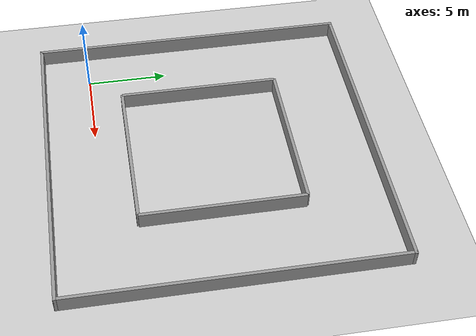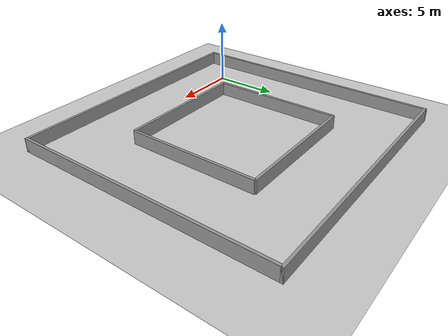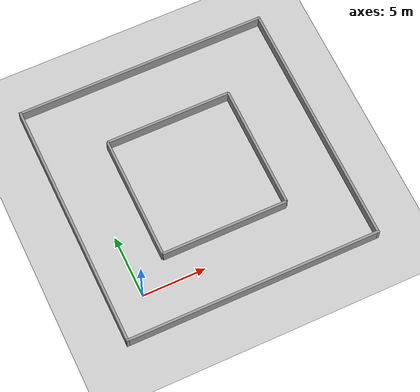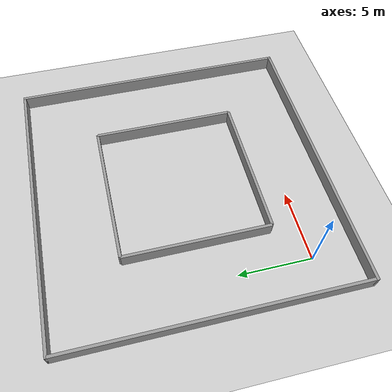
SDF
<?xml version="1.0" ?>
<sdf version="1.3">
  <world name="default">
    <!-- A global light source -->
    <include>
      <uri>model://sun</uri>
    </include>

    <!-- A ground plane -->
    <include>
      <uri>model://ground_plane</uri>
    </include>

<model name='BuildingDefaultName'>

    <link name='Wall_3'>
      <collision name='Wall_3_Collision'>
        <geometry>
          <box>
            <size>20.2 0.2 2</size>
          </box>
        </geometry>
        <pose>7.5 0 0 0 -0 0</pose>
      </collision>
      <visual name='Wall_3_Visual'>
        <pose>7.5 0 0 0 -0 0</pose>
        <geometry>
          <box>
            <size>20.2 0.2 2</size>
          </box>
        </geometry>
        <material>
          <script>
            <uri>file://media/materials/scripts/gazebo.material</uri>
            <name>Gazebo/Grey</name>
          </script>
        </material>
      </visual>
      <velocity_decay>
        <linear>0</linear>
        <angular>0</angular>
      </velocity_decay>
      <pose>0 17.0 0 0 -0 0</pose>
    </link>

    <link name='Wall_4'>
      <collision name='Wall_4_Collision'>
        <geometry>
          <box>
            <size>10.0 0.2 2</size>
          </box>
        </geometry>
        <pose>7.5 0 0 0 -0 0</pose>
      </collision>
      <visual name='Wall_4_Visual'>
        <pose>7.5 0 0 0 -0 0</pose>
        <geometry>
          <box>
            <size>10.0 0.2 2</size>
          </box>
        </geometry>
        <material>
          <script>
            <uri>file://media/materials/scripts/gazebo.material</uri>
            <name>Gazebo/Grey</name>
          </script>
        </material>
      </visual>
      <velocity_decay>
        <linear>0</linear>
        <angular>0</angular>
      </velocity_decay>
      <pose>0.0 2.0 0 0 -0 0</pose>
    </link>

    <link name='Wall_5'>
      <collision name='Wall_5_Collision'>
        <geometry>
          <box>
            <size>10.0 0.2 2</size>
          </box>
        </geometry>
        <pose>7.5 0 0 0 -0 0</pose>
      </collision>
      <visual name='Wall_5_Visual'>
        <pose>7.5 0 0 0 -0 0</pose>
        <geometry>
          <box>
            <size>10.0 0.2 2</size>
          </box>
        </geometry>
        <material>
          <script>
            <uri>file://media/materials/scripts/gazebo.material</uri>
            <name>Gazebo/Grey</name>
          </script>
        </material>
      </visual>
      <velocity_decay>
        <linear>0</linear>
        <angular>0</angular>
      </velocity_decay>
      <pose>0.0 12.0 0 0 -0 0</pose>
    </link>

    <link name='Wall_6'>
      <collision name='Wall_6_Collision'>
        <geometry>
          <box>
            <size>20.2 0.2 2</size>
          </box>
        </geometry>
        <pose>7.5 0 0 0 -0 0</pose>
      </collision>
      <visual name='Wall_6_Visual'>
        <pose>7.5 0 0 0 -0 0</pose>
        <geometry>
          <box>
            <size>20.2 0.2 2</size>
          </box>
        </geometry>
        <material>
          <script>
            <uri>file://media/materials/scripts/gazebo.material</uri>
            <name>Gazebo/Grey</name>
          </script>
        </material>
      </visual>
      <velocity_decay>
        <linear>0</linear>
        <angular>0</angular>
      </velocity_decay>
      <pose>0 -3.0 0 0 -0 0</pose>
    </link>

    <link name='Wall_7'>
      <collision name='Wall_7_Collision'>
        <geometry>
          <box>
            <size>0.2 10.0 2</size>
          </box>
        </geometry>
        <pose>12.5 5.0 0 0 -0 0</pose>
      </collision>
      <visual name='Wall_7_Visual'>
        <pose>12.5 5.0 0 0 -0 0</pose>
        <geometry>
          <box>
            <size>0.2 10.0 2</size>
          </box>
        </geometry>
        <material>
          <script>
            <uri>file://media/materials/scripts/gazebo.material</uri>
            <name>Gazebo/Grey</name>
          </script>
        </material>
      </visual>
      <velocity_decay>
        <linear>0</linear>
        <angular>0</angular>
      </velocity_decay>
      <pose>0.0 2.0 0 0 -0 0</pose>
    </link>

    <link name='Wall_8'>
      <collision name='Wall_8_Collision'>
        <geometry>
          <box>
            <size>0.2 10.0 2</size>
          </box>
        </geometry>
        <pose>2.5 5.0 0 0 -0 0</pose>
      </collision>
      <visual name='Wall_8_Visual'>
        <pose>2.5 5.0 0 0 -0 0</pose>
        <geometry>
          <box>
            <size>0.2 10.0 2</size>
          </box>
        </geometry>
        <material>
          <script>
            <uri>file://media/materials/scripts/gazebo.material</uri>
            <name>Gazebo/Grey</name>
          </script>
        </material>
      </visual>
      <velocity_decay>
        <linear>0</linear>
        <angular>0</angular>
      </velocity_decay>
      <pose>0.0 2.0 0 0 -0 0</pose>
    </link>

    <link name='Wall_9'>
      <collision name='Wall_9_Collision'>
        <geometry>
          <box>
            <size>0.2 20.2 2</size>
          </box>
        </geometry>
        <pose>-2.5 5.0 0 0 -0 0</pose>
      </collision>
      <visual name='Wall_9_Visual'>
        <pose>-2.5 5.0 0 0 -0 0</pose>
        <geometry>
          <box>
            <size>0.2 20.2 2</size>
          </box>
        </geometry>
        <material>
          <script>
            <uri>file://media/materials/scripts/gazebo.material</uri>
            <name>Gazebo/Grey</name>
          </script>
        </material>
      </visual>
      <velocity_decay>
        <linear>0</linear>
        <angular>0</angular>
      </velocity_decay>
      <pose>0.0 2.0 0 0 -0 0</pose>
    </link>

    <link name='Wall_10'>
      <collision name='Wall_10_Collision'>
        <geometry>
          <box>
            <size>0.2 20.2 2</size>
          </box>
        </geometry>
        <pose>17.5 5.0 0 0 -0 0</pose>
      </collision>
      <visual name='Wall_10_Visual'>
        <pose>17.5 5.0 0 0 -0 0</pose>
        <geometry>
          <box>
            <size>0.2 20.2 2</size>
          </box>
        </geometry>
        <material>
          <script>
            <uri>file://media/materials/scripts/gazebo.material</uri>
            <name>Gazebo/Grey</name>
          </script>
        </material>
      </visual>
      <velocity_decay>
        <linear>0</linear>
        <angular>0</angular>
      </velocity_decay>
      <pose>0.0 2.0 0 0 -0 0</pose>
    </link>

    <static>1</static>
  </model>

  </world>
</sdf>
